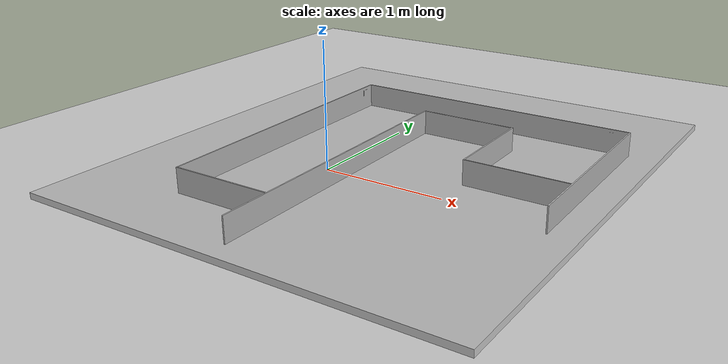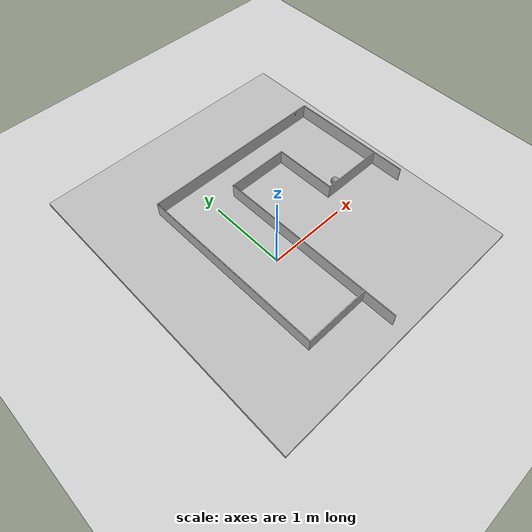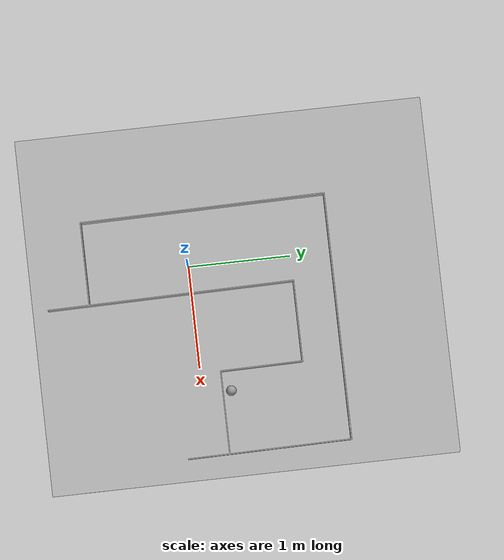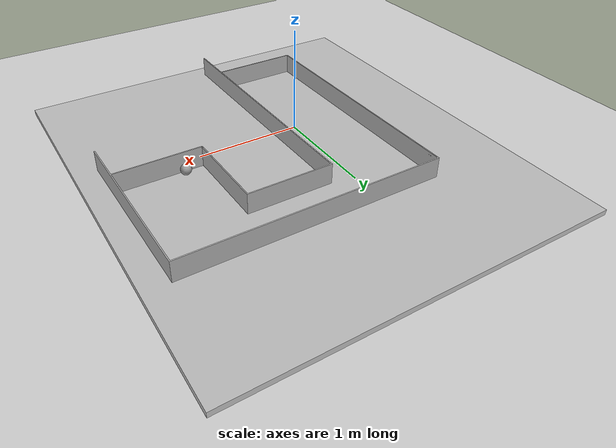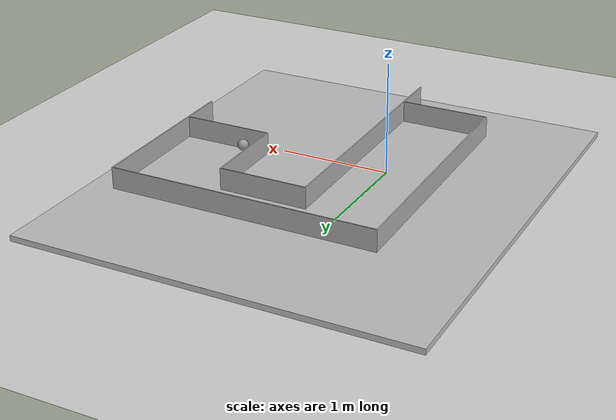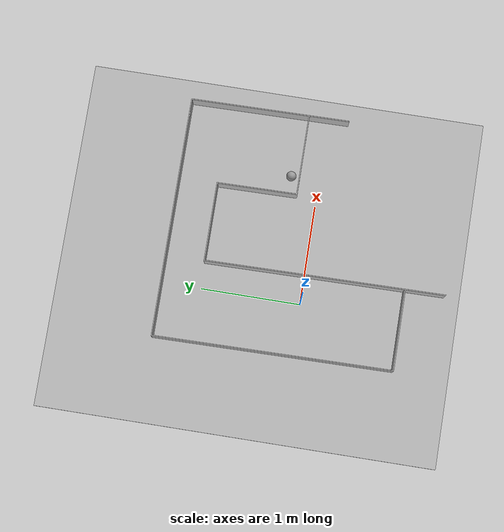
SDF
<sdf version="1.6">
 <world name="default">
  <light name="light" type="point">
   <pose>1.25558 0.434665 0.174122 0 -0 0</pose>
   <diffuse>0.2 0.2 0.2 1</diffuse>
   <specular>1 1 1 1</specular>
   <attenuation>
    <range>1.5</range>
    <constant>0.2</constant>
    <linear>0.2</linear>
    <quadratic>0.3</quadratic>
   </attenuation>
   <direction>0 0 -1</direction>
  </light>
  <model name="ground_plane">
   <static>1</static>
   <link name="link">
    <collision name="collision">
     <geometry><plane><normal>0 0 1</normal><size>100 100</size></plane></geometry>
     <surface><friction><ode><mu>100</mu><mu2>50</mu2></ode></friction></surface>
    </collision>
    <visual name="visual">
     <cast_shadows>0</cast_shadows>
     <geometry><plane><normal>0 0 1</normal><size>100 100</size></plane></geometry>
     <material>
      <script><uri>file://media/materials/scripts/gazebo.material</uri><name>Gazebo/Grey</name></script>
     </material>
    </visual>
   </link>
  </model>
  <gravity>0 0 -9.8</gravity>
  <magnetic_field>6e-06 2.3e-05 -4.2e-05</magnetic_field>
  <atmosphere type="adiabatic"/>
  <physics name="default_physics" default="0" type="ode">
   <max_step_size>0.001</max_step_size>
   <real_time_factor>1</real_time_factor>
   <real_time_update_rate>1000</real_time_update_rate>
  </physics>
  <scene><ambient>0.3 0.3 0.3 1</ambient><background>0.3 0.3 0.3 1</background><shadows>1</shadows></scene>
  <spherical_coordinates>
   <surface_model>EARTH_WGS84</surface_model>
   <latitude_deg>0</latitude_deg>
   <longitude_deg>0</longitude_deg>
   <elevation>0</elevation>
   <heading_deg>0</heading_deg>
  </spherical_coordinates>
  <model name="ground_0">
   <pose>0.342609 0.689007 0 0 -0 0</pose>
   <link name="link_0">
    <inertial>
     <mass>1</mass>
     <inertia>
      <ixx>0.166667</ixx>
      <ixy>0</ixy>
      <ixz>0</ixz>
      <iyy>0.166667</iyy>
      <iyz>0</iyz>
      <izz>0.166667</izz>
     </inertia>
    </inertial>
    <visual name="visual">
     <geometry><mesh><uri>file://models/stl/ground/ground.dae</uri><scale>1 1 1</scale></mesh></geometry>
     <material><shader type="pixel"><normal_map>__default__</normal_map></shader></material>
    </visual>
    <collision name="collision">
     <pose>0 -0.19 0 0 -0 0</pose>
     <geometry><box><size>3.5 4 0.1</size></box></geometry>
     <surface>
      <friction>
       <ode><mu>1</mu><mu2>1</mu2><fdir1>0 0 0</fdir1><slip1>0</slip1><slip2>0</slip2></ode>
       <torsional>
        <coefficient>1</coefficient>
        <patch_radius>0</patch_radius>
        <surface_radius>0</surface_radius>
        <use_patch_radius>1</use_patch_radius>
        <ode><slip>0</slip></ode>
       </torsional>
      </friction>
      <bounce><restitution_coefficient>0</restitution_coefficient><threshold>1e+06</threshold></bounce>
      <contact>
       <collide_without_contact>0</collide_without_contact>
       <collide_without_contact_bitmask>1</collide_without_contact_bitmask>
       <collide_bitmask>1</collide_bitmask>
       <ode>
        <soft_cfm>0</soft_cfm>
        <soft_erp>0.2</soft_erp>
        <kp>1e+13</kp>
        <kd>1</kd>
        <max_vel>0.01</max_vel>
        <min_depth>0</min_depth>
       </ode>
       <bullet>
        <split_impulse>1</split_impulse>
        <split_impulse_penetration_threshold>-0.01</split_impulse_penetration_threshold>
        <soft_cfm>0</soft_cfm>
        <soft_erp>0.2</soft_erp>
        <kp>1e+13</kp>
        <kd>1</kd>
       </bullet>
      </contact>
     </surface>
    </collision>
   </link>
   <static>1</static>
  </model>
  <model name="laberynth">
   <link name="link_0">
    <inertial>
     <mass>1</mass>
     <inertia>
      <ixx>0.166667</ixx>
      <ixy>0</ixy>
      <ixz>0</ixz>
      <iyy>0.166667</iyy>
      <iyz>0</iyz>
      <izz>0.166667</izz>
     </inertia>
    </inertial>
    <visual name="visual">
     <geometry><mesh><uri>file://models/stl/labyrinth/laberinto.dae</uri><scale>1 1 1</scale></mesh></geometry>
    </visual>
    <collision name="collision">
     <geometry><mesh><uri>file://models/stl/labyrinth/laberinto.dae</uri><scale>1 1 1</scale></mesh></geometry>
     <surface>
      <friction>
       <ode><mu>1</mu><mu2>1</mu2><fdir1>0 0 0</fdir1><slip1>0</slip1><slip2>0</slip2></ode>
       <torsional>
        <coefficient>1</coefficient>
        <patch_radius>0</patch_radius>
        <surface_radius>0</surface_radius>
        <use_patch_radius>1</use_patch_radius>
        <ode><slip>0</slip></ode>
       </torsional>
      </friction>
      <bounce><restitution_coefficient>0</restitution_coefficient><threshold>1e+06</threshold></bounce>
      <contact>
       <collide_without_contact>0</collide_without_contact>
       <collide_without_contact_bitmask>1</collide_without_contact_bitmask>
       <collide_bitmask>1</collide_bitmask>
       <ode>
        <soft_cfm>0</soft_cfm>
        <soft_erp>0.2</soft_erp>
        <kp>1e+13</kp>
        <kd>1</kd>
        <max_vel>0.01</max_vel>
        <min_depth>0</min_depth>
       </ode>
       <bullet>
        <split_impulse>1</split_impulse>
        <split_impulse_penetration_threshold>-0.01</split_impulse_penetration_threshold>
        <soft_cfm>0</soft_cfm>
        <soft_erp>0.2</soft_erp>
        <kp>1e+13</kp>
        <kd>1</kd>
       </bullet>
      </contact>
     </surface>
    </collision>
   </link>
   <static>1</static>
   <pose>-0.150759 1.38167 0.05 0 -0 0</pose>
  </model>
  <model name="light_bulb">
   <link name="link">
    <inertial>
     <mass>1</mass>
     <inertia><ixx>0.1</ixx><ixy>0</ixy><ixz>0</ixz><iyy>0.1</iyy><iyz>0</iyz><izz>0.1</izz></inertia>
    </inertial>
    <gravity>0</gravity>
    <visual name="visual">
     <geometry><sphere><radius>0.05</radius></sphere></geometry>
     <material>
      <script><name>Gazebo/Grey</name><uri>file://media/materials/scripts/gazebo.material</uri></script>
      <ambient>1 1 1 1</ambient>
      <diffuse>1 1 1 1</diffuse>
      <specular>1 1 1 1</specular>
      <emissive>1 1 1 1</emissive>
      <shader type="vertex"><normal_map>__default__</normal_map></shader>
     </material>
     <cast_shadows>0</cast_shadows>
    </visual>
    <collision name="collision">
     <geometry><sphere><radius>0.05</radius></sphere></geometry>
     <surface>
      <friction>
       <ode><mu>1</mu><mu2>1</mu2><fdir1>0 0 0</fdir1><slip1>0</slip1><slip2>0</slip2></ode>
       <torsional>
        <coefficient>1</coefficient>
        <patch_radius>0</patch_radius>
        <surface_radius>0</surface_radius>
        <use_patch_radius>1</use_patch_radius>
        <ode><slip>0</slip></ode>
       </torsional>
      </friction>
      <bounce><restitution_coefficient>0</restitution_coefficient><threshold>1e+06</threshold></bounce>
      <contact>
       <collide_without_contact>0</collide_without_contact>
       <collide_without_contact_bitmask>1</collide_without_contact_bitmask>
       <collide_bitmask>1</collide_bitmask>
       <ode>
        <soft_cfm>0</soft_cfm>
        <soft_erp>0.2</soft_erp>
        <kp>1e+13</kp>
        <kd>1</kd>
        <max_vel>0.01</max_vel>
        <min_depth>0</min_depth>
       </ode>
       <bullet>
        <split_impulse>1</split_impulse>
        <split_impulse_penetration_threshold>-0.01</split_impulse_penetration_threshold>
        <soft_cfm>0</soft_cfm>
        <soft_erp>0.2</soft_erp>
        <kp>1e+13</kp>
        <kd>1</kd>
       </bullet>
      </contact>
     </surface>
    </collision>
   </link>
   <static>1</static>
   <pose>1.25558 0.284665 0.124122 0 -0 0</pose>
  </model>
 </world>
</sdf>
